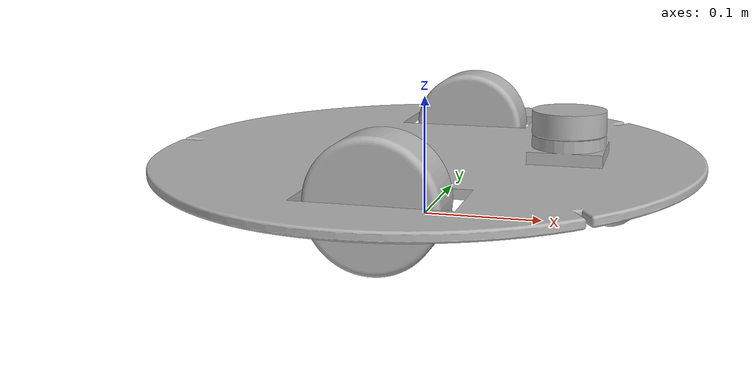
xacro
<?xml version="1.0" ?>
<robot name="zafeera_base" xmlns:xacro="http://www.ros.org/wiki/xacro">

<xacro:include filename="$(find zafeera_base_description)/urdf/materials.xacro" />
<xacro:include filename="$(find zafeera_base_description)/urdf/zafeera_base.trans" />
<xacro:include filename="$(find zafeera_base_description)/urdf/zafeera_base.gazebo" />
<link name="base_link">
  <inertial>
    <origin xyz="0.007907419808110348 0.00018804355094021247 0.04821740550091045" rpy="0 0 0"/>
    <mass value="0.800304200690207"/>
    <inertia ixx="0.009339" iyy="0.011731" izz="0.020943" ixy="-0.0" iyz="0.0" ixz="-6e-05"/>
  </inertial>
  <visual>
    <origin xyz="0 0 0" rpy="0 0 0"/>
    <geometry>
      <mesh filename="package://zafeera_base_description/meshes/base_link.stl" scale="0.001 0.001 0.001"/>
    </geometry>
    <material name="silver"/>
  </visual>
  <collision>
    <origin xyz="0 0 0" rpy="0 0 0"/>
    <geometry>
      <mesh filename="package://zafeera_base_description/meshes/base_link.stl" scale="0.001 0.001 0.001"/>
    </geometry>
  </collision>
</link>

<link name="left_wheel_1">
  <inertial>
    <origin xyz="4.214372445621867e-07 0.02249996737943144 6.938893903907228e-18" rpy="0 0 0"/>
    <mass value="0.3248024434720913"/>
    <inertia ixx="0.000256" iyy="0.000404" izz="0.000256" ixy="0.0" iyz="0.0" ixz="-0.0"/>
  </inertial>
  <visual>
    <origin xyz="-0.008753 -0.131083 -0.05" rpy="0 0 0"/>
    <geometry>
      <mesh filename="package://zafeera_base_description/meshes/left_wheel_1.stl" scale="0.001 0.001 0.001"/>
    </geometry>
    <material name="silver"/>
  </visual>
  <collision>
    <origin xyz="-0.008753 -0.131083 -0.05" rpy="0 0 0"/>
    <geometry>
      <mesh filename="package://zafeera_base_description/meshes/left_wheel_1.stl" scale="0.001 0.001 0.001"/>
    </geometry>
  </collision>
</link>

<link name="right_wheel_1">
  <inertial>
    <origin xyz="-5.032442903681045e-07 -0.02249961661343622 0.0" rpy="0 0 0"/>
    <mass value="0.3248024434720912"/>
    <inertia ixx="0.000256" iyy="0.000404" izz="0.000256" ixy="0.0" iyz="0.0" ixz="-0.0"/>
  </inertial>
  <visual>
    <origin xyz="-0.005146 0.130721 -0.05" rpy="0 0 0"/>
    <geometry>
      <mesh filename="package://zafeera_base_description/meshes/right_wheel_1.stl" scale="0.001 0.001 0.001"/>
    </geometry>
    <material name="silver"/>
  </visual>
  <collision>
    <origin xyz="-0.005146 0.130721 -0.05" rpy="0 0 0"/>
    <geometry>
      <mesh filename="package://zafeera_base_description/meshes/right_wheel_1.stl" scale="0.001 0.001 0.001"/>
    </geometry>
  </collision>
</link>

<link name="lidar_1">
  <inertial>
    <origin xyz="-2.750177009597232e-07 2.4523494977039535e-07 0.010015956854816294" rpy="0 0 0"/>
    <mass value="0.07282755266550214"/>
    <inertia ixx="1.9e-05" iyy="1.9e-05" izz="3.3e-05" ixy="-0.0" iyz="-0.0" ixz="-0.0"/>
  </inertial>
  <visual>
    <origin xyz="-0.120104 -0.000144 -0.074" rpy="0 0 0"/>
    <geometry>
      <mesh filename="package://zafeera_base_description/meshes/lidar_1.stl" scale="0.001 0.001 0.001"/>
    </geometry>
    <material name="silver"/>
  </visual>
  <collision>
    <origin xyz="-0.120104 -0.000144 -0.074" rpy="0 0 0"/>
    <geometry>
      <mesh filename="package://zafeera_base_description/meshes/lidar_1.stl" scale="0.001 0.001 0.001"/>
    </geometry>
  </collision>
</link>

<joint name="Revolute1" type="continuous">
  <origin xyz="0.008753 0.131083 0.05" rpy="0 0 0"/>
  <parent link="base_link"/>
  <child link="left_wheel_1"/>
  <axis xyz="1e-06 1.0 0.0"/>
</joint>

<joint name="Revolute2" type="continuous">
  <origin xyz="0.005146 -0.130721 0.05" rpy="0 0 0"/>
  <parent link="base_link"/>
  <child link="right_wheel_1"/>
  <axis xyz="1e-06 1.0 0.0"/>
</joint>

<joint name="Rigid3" type="fixed">
  <origin xyz="0.120104 0.000144 0.074" rpy="0 0 0"/>
  <parent link="base_link"/>
  <child link="lidar_1"/>
</joint>

</robot>

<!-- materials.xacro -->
<robot name="zafeera_base" xmlns:xacro="http://www.ros.org/wiki/xacro" >

<material name="silver">
  <color rgba="0.700 0.700 0.700 1.000"/>
</material>

</robot>
